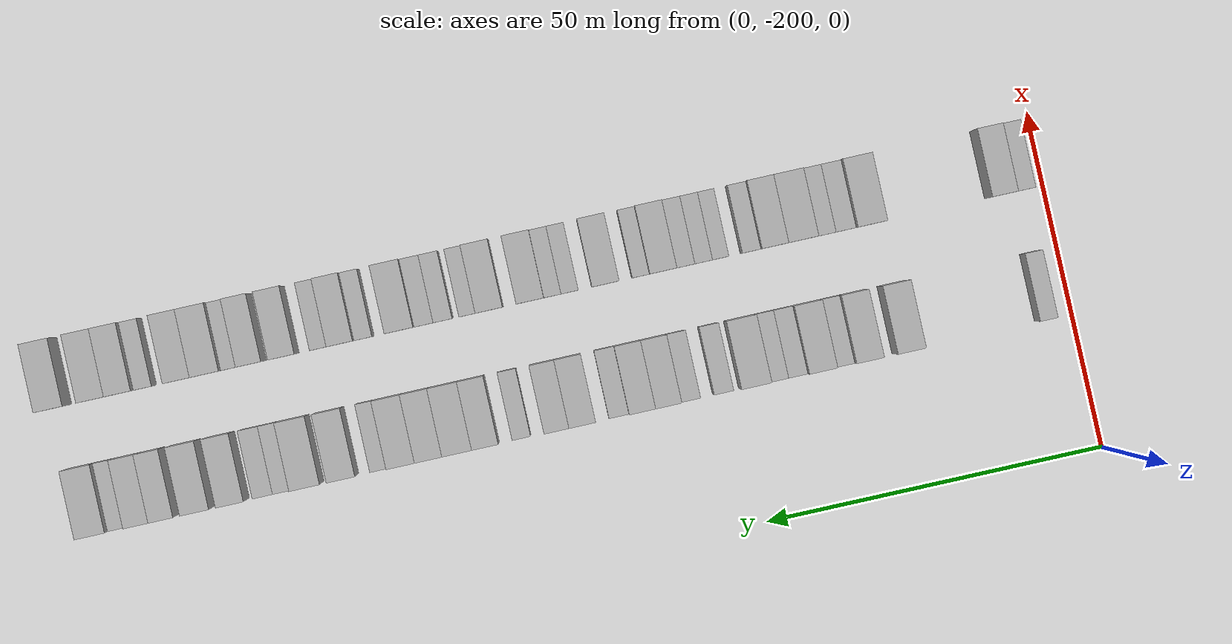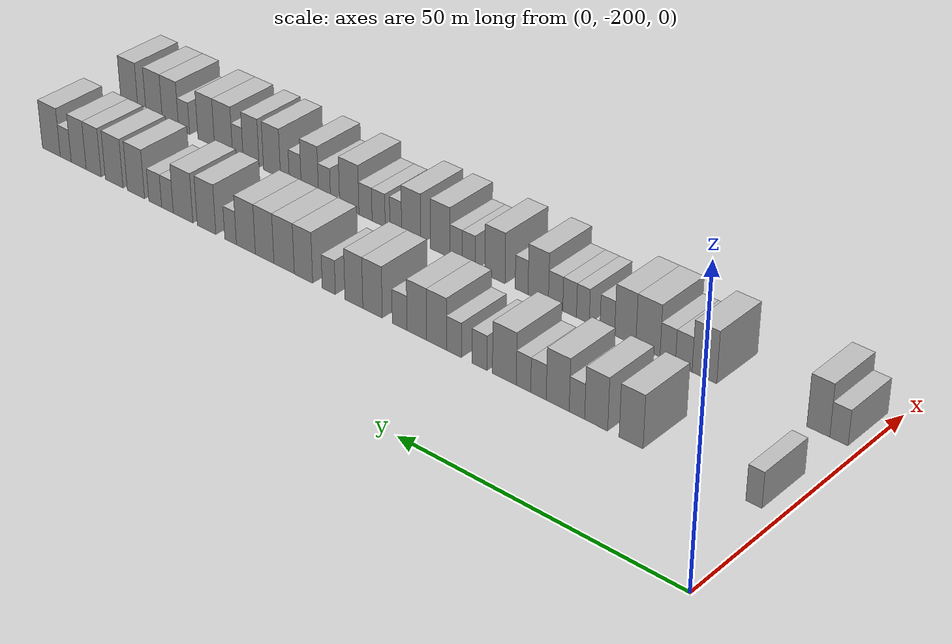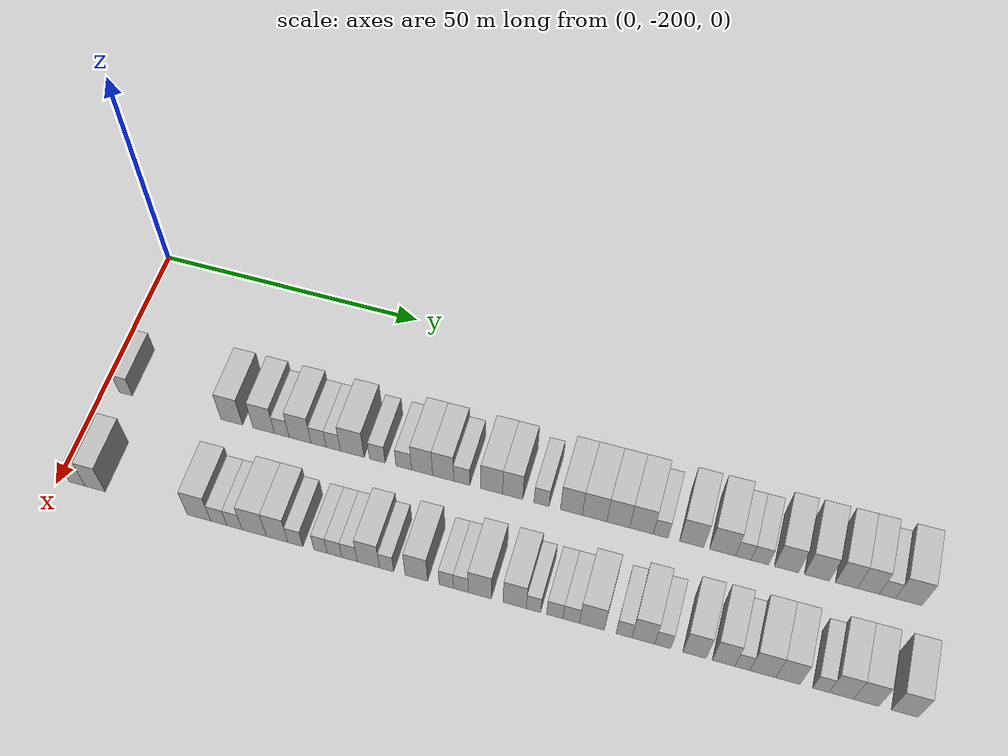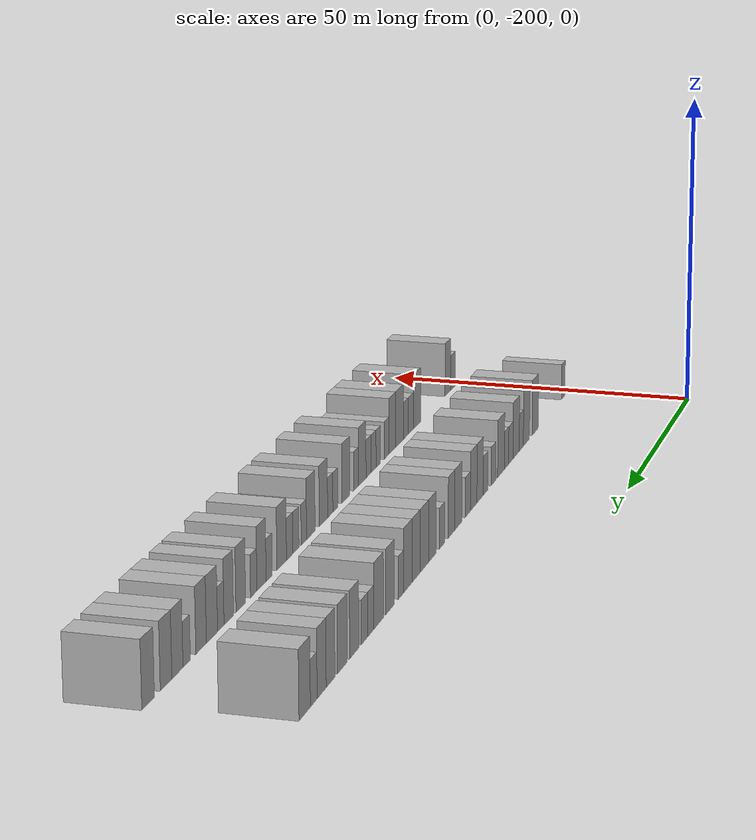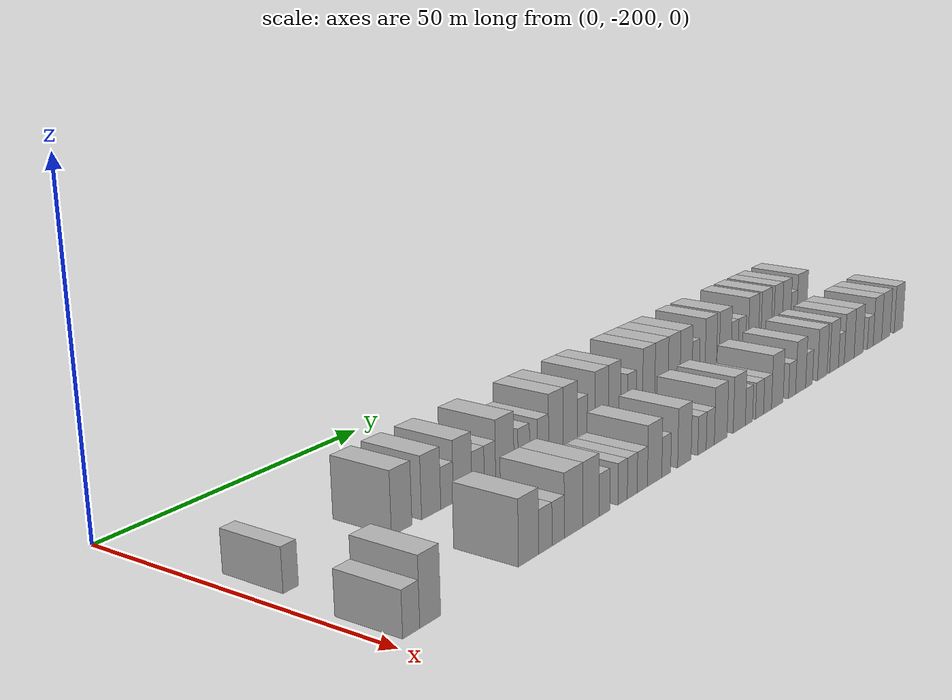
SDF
<sdf version="1.6">
 <world name="default">
  <model name="building_1">
   <static>1</static>
   <pose>25.0000 -195.6918 0 0.000000 0.000000 0.000000</pose>
   <link name="link">
    <pose>0 0 3.00 0 0 0</pose>
    <collision name="collision"><geometry><box><size>10.0000 2.6163 6.0000</size></box></geometry></collision>
    <visual name="visual">
     <cast_shadows>0</cast_shadows>
     <geometry><box><size>10.0000 2.6163 6.0000</size></box></geometry>
     <material>
      <script>
       <uri>model://HANNAS_wall/materials/scripts</uri>
       <uri>model://HANNAS_wall/materials/textures</uri>
       <name>vrc/HANNAS_wall</name>
      </script>
     </material>
    </visual>
   </link>
  </model>
  <model name="building_2">
   <static>1</static>
   <pose>25.0000 -175.1636 0 0.000000 0.000000 0.000000</pose>
   <link name="link">
    <pose>0 0 4.50 0 0 0</pose>
    <collision name="collision"><geometry><box><size>10.0000 4.1467 9.0000</size></box></geometry></collision>
    <visual name="visual">
     <cast_shadows>0</cast_shadows>
     <geometry><box><size>10.0000 4.1467 9.0000</size></box></geometry>
     <material>
      <script>
       <uri>model://HANNAS_wall/materials/scripts</uri>
       <uri>model://HANNAS_wall/materials/textures</uri>
       <name>vrc/HANNAS_wall</name>
      </script>
     </material>
    </visual>
   </link>
  </model>
  <model name="building_3">
   <static>1</static>
   <pose>25.0000 -169.0560 0 0.000000 0.000000 0.000000</pose>
   <link name="link">
    <pose>0 0 4.50 0 0 0</pose>
    <collision name="collision"><geometry><box><size>10.0000 4.0685 9.0000</size></box></geometry></collision>
    <visual name="visual">
     <cast_shadows>0</cast_shadows>
     <geometry><box><size>10.0000 4.0685 9.0000</size></box></geometry>
     <material>
      <script>
       <uri>model://HANNAS_wall/materials/scripts</uri>
       <uri>model://HANNAS_wall/materials/textures</uri>
       <name>vrc/HANNAS_wall</name>
      </script>
     </material>
    </visual>
   </link>
  </model>
  <model name="building_4">
   <static>1</static>
   <pose>25.0000 -165.6391 0 0.000000 0.000000 0.000000</pose>
   <link name="link">
    <pose>0 0 3.00 0 0 0</pose>
    <collision name="collision"><geometry><box><size>10.0000 2.7654 6.0000</size></box></geometry></collision>
    <visual name="visual">
     <cast_shadows>0</cast_shadows>
     <geometry><box><size>10.0000 2.7654 6.0000</size></box></geometry>
     <material>
      <script>
       <uri>model://HANNAS_wall/materials/scripts</uri>
       <uri>model://HANNAS_wall/materials/textures</uri>
       <name>vrc/HANNAS_wall</name>
      </script>
     </material>
    </visual>
   </link>
  </model>
  <model name="building_5">
   <static>1</static>
   <pose>25.0000 -162.1850 0 0.000000 0.000000 0.000000</pose>
   <link name="link">
    <pose>0 0 4.50 0 0 0</pose>
    <collision name="collision"><geometry><box><size>10.0000 4.1427 9.0000</size></box></geometry></collision>
    <visual name="visual">
     <cast_shadows>0</cast_shadows>
     <geometry><box><size>10.0000 4.1427 9.0000</size></box></geometry>
     <material>
      <script>
       <uri>model://HANNAS_wall/materials/scripts</uri>
       <uri>model://HANNAS_wall/materials/textures</uri>
       <name>vrc/HANNAS_wall</name>
      </script>
     </material>
    </visual>
   </link>
  </model>
  <model name="building_6">
   <static>1</static>
   <pose>25.0000 -158.6930 0 0.000000 0.000000 0.000000</pose>
   <link name="link">
    <pose>0 0 3.00 0 0 0</pose>
    <collision name="collision"><geometry><box><size>10.0000 2.8413 6.0000</size></box></geometry></collision>
    <visual name="visual">
     <cast_shadows>0</cast_shadows>
     <geometry><box><size>10.0000 2.8413 6.0000</size></box></geometry>
     <material>
      <script>
       <uri>model://HANNAS_wall/materials/scripts</uri>
       <uri>model://HANNAS_wall/materials/textures</uri>
       <name>vrc/HANNAS_wall</name>
      </script>
     </material>
    </visual>
   </link>
  </model>
  <model name="building_7">
   <static>1</static>
   <pose>25.0000 -155.9440 0 0.000000 0.000000 0.000000</pose>
   <link name="link">
    <pose>0 0 3.00 0 0 0</pose>
    <collision name="collision"><geometry><box><size>10.0000 2.6566 6.0000</size></box></geometry></collision>
    <visual name="visual">
     <cast_shadows>0</cast_shadows>
     <geometry><box><size>10.0000 2.6566 6.0000</size></box></geometry>
     <material>
      <script>
       <uri>model://HANNAS_wall/materials/scripts</uri>
       <uri>model://HANNAS_wall/materials/textures</uri>
       <name>vrc/HANNAS_wall</name>
      </script>
     </material>
    </visual>
   </link>
  </model>
  <model name="building_8">
   <static>1</static>
   <pose>25.0000 -152.3970 0 0.000000 0.000000 0.000000</pose>
   <link name="link">
    <pose>0 0 4.50 0 0 0</pose>
    <collision name="collision"><geometry><box><size>10.0000 4.4376 9.0000</size></box></geometry></collision>
    <visual name="visual">
     <cast_shadows>0</cast_shadows>
     <geometry><box><size>10.0000 4.4376 9.0000</size></box></geometry>
     <material>
      <script>
       <uri>model://HANNAS_wall/materials/scripts</uri>
       <uri>model://HANNAS_wall/materials/textures</uri>
       <name>vrc/HANNAS_wall</name>
      </script>
     </material>
    </visual>
   </link>
  </model>
  <model name="building_9">
   <static>1</static>
   <pose>25.0000 -147.7334 0 0.000000 0.000000 0.000000</pose>
   <link name="link">
    <pose>0 0 3.00 0 0 0</pose>
    <collision name="collision"><geometry><box><size>10.0000 2.8895 6.0000</size></box></geometry></collision>
    <visual name="visual">
     <cast_shadows>0</cast_shadows>
     <geometry><box><size>10.0000 2.8895 6.0000</size></box></geometry>
     <material>
      <script>
       <uri>model://HANNAS_wall/materials/scripts</uri>
       <uri>model://HANNAS_wall/materials/textures</uri>
       <name>vrc/HANNAS_wall</name>
      </script>
     </material>
    </visual>
   </link>
  </model>
  <model name="building_10">
   <static>1</static>
   <pose>25.0000 -142.8541 0 0.000000 0.000000 0.000000</pose>
   <link name="link">
    <pose>0 0 3.00 0 0 0</pose>
    <collision name="collision"><geometry><box><size>10.0000 2.8692 6.0000</size></box></geometry></collision>
    <visual name="visual">
     <cast_shadows>0</cast_shadows>
     <geometry><box><size>10.0000 2.8692 6.0000</size></box></geometry>
     <material>
      <script>
       <uri>model://HANNAS_wall/materials/scripts</uri>
       <uri>model://HANNAS_wall/materials/textures</uri>
       <name>vrc/HANNAS_wall</name>
      </script>
     </material>
    </visual>
   </link>
  </model>
  <model name="building_11">
   <static>1</static>
   <pose>25.0000 -139.4977 0 0.000000 0.000000 0.000000</pose>
   <link name="link">
    <pose>0 0 4.50 0 0 0</pose>
    <collision name="collision"><geometry><box><size>10.0000 3.8434 9.0000</size></box></geometry></collision>
    <visual name="visual">
     <cast_shadows>0</cast_shadows>
     <geometry><box><size>10.0000 3.8434 9.0000</size></box></geometry>
     <material>
      <script>
       <uri>model://HANNAS_wall/materials/scripts</uri>
       <uri>model://HANNAS_wall/materials/textures</uri>
       <name>vrc/HANNAS_wall</name>
      </script>
     </material>
    </visual>
   </link>
  </model>
  <model name="building_12">
   <static>1</static>
   <pose>25.0000 -135.6449 0 0.000000 0.000000 0.000000</pose>
   <link name="link">
    <pose>0 0 4.50 0 0 0</pose>
    <collision name="collision"><geometry><box><size>10.0000 3.8623 9.0000</size></box></geometry></collision>
    <visual name="visual">
     <cast_shadows>0</cast_shadows>
     <geometry><box><size>10.0000 3.8623 9.0000</size></box></geometry>
     <material>
      <script>
       <uri>model://HANNAS_wall/materials/scripts</uri>
       <uri>model://HANNAS_wall/materials/textures</uri>
       <name>vrc/HANNAS_wall</name>
      </script>
     </material>
    </visual>
   </link>
  </model>
  <model name="building_13">
   <static>1</static>
   <pose>25.0000 -132.2493 0 0.000000 0.000000 0.000000</pose>
   <link name="link">
    <pose>0 0 3.00 0 0 0</pose>
    <collision name="collision"><geometry><box><size>10.0000 2.9291 6.0000</size></box></geometry></collision>
    <visual name="visual">
     <cast_shadows>0</cast_shadows>
     <geometry><box><size>10.0000 2.9291 6.0000</size></box></geometry>
     <material>
      <script>
       <uri>model://HANNAS_wall/materials/scripts</uri>
       <uri>model://HANNAS_wall/materials/textures</uri>
       <name>vrc/HANNAS_wall</name>
      </script>
     </material>
    </visual>
   </link>
  </model>
  <model name="building_14">
   <static>1</static>
   <pose>25.0000 -126.8231 0 0.000000 0.000000 0.000000</pose>
   <link name="link">
    <pose>0 0 4.50 0 0 0</pose>
    <collision name="collision"><geometry><box><size>10.0000 3.9233 9.0000</size></box></geometry></collision>
    <visual name="visual">
     <cast_shadows>0</cast_shadows>
     <geometry><box><size>10.0000 3.9233 9.0000</size></box></geometry>
     <material>
      <script>
       <uri>model://HANNAS_wall/materials/scripts</uri>
       <uri>model://HANNAS_wall/materials/textures</uri>
       <name>vrc/HANNAS_wall</name>
      </script>
     </material>
    </visual>
   </link>
  </model>
  <model name="building_15">
   <static>1</static>
   <pose>25.0000 -123.0368 0 0.000000 0.000000 0.000000</pose>
   <link name="link">
    <pose>0 0 4.50 0 0 0</pose>
    <collision name="collision"><geometry><box><size>10.0000 3.6492 9.0000</size></box></geometry></collision>
    <visual name="visual">
     <cast_shadows>0</cast_shadows>
     <geometry><box><size>10.0000 3.6492 9.0000</size></box></geometry>
     <material>
      <script>
       <uri>model://HANNAS_wall/materials/scripts</uri>
       <uri>model://HANNAS_wall/materials/textures</uri>
       <name>vrc/HANNAS_wall</name>
      </script>
     </material>
    </visual>
   </link>
  </model>
  <model name="building_16">
   <static>1</static>
   <pose>25.0000 -117.8522 0 0.000000 0.000000 0.000000</pose>
   <link name="link">
    <pose>0 0 3.00 0 0 0</pose>
    <collision name="collision"><geometry><box><size>10.0000 2.7202 6.0000</size></box></geometry></collision>
    <visual name="visual">
     <cast_shadows>0</cast_shadows>
     <geometry><box><size>10.0000 2.7202 6.0000</size></box></geometry>
     <material>
      <script>
       <uri>model://HANNAS_wall/materials/scripts</uri>
       <uri>model://HANNAS_wall/materials/textures</uri>
       <name>vrc/HANNAS_wall</name>
      </script>
     </material>
    </visual>
   </link>
  </model>
  <model name="building_17">
   <static>1</static>
   <pose>25.0000 -112.5469 0 0.000000 0.000000 0.000000</pose>
   <link name="link">
    <pose>0 0 4.50 0 0 0</pose>
    <collision name="collision"><geometry><box><size>10.0000 3.8903 9.0000</size></box></geometry></collision>
    <visual name="visual">
     <cast_shadows>0</cast_shadows>
     <geometry><box><size>10.0000 3.8903 9.0000</size></box></geometry>
     <material>
      <script>
       <uri>model://HANNAS_wall/materials/scripts</uri>
       <uri>model://HANNAS_wall/materials/textures</uri>
       <name>vrc/HANNAS_wall</name>
      </script>
     </material>
    </visual>
   </link>
  </model>
  <model name="building_18">
   <static>1</static>
   <pose>25.0000 -108.4242 0 0.000000 0.000000 0.000000</pose>
   <link name="link">
    <pose>0 0 4.50 0 0 0</pose>
    <collision name="collision"><geometry><box><size>10.0000 4.3552 9.0000</size></box></geometry></collision>
    <visual name="visual">
     <cast_shadows>0</cast_shadows>
     <geometry><box><size>10.0000 4.3552 9.0000</size></box></geometry>
     <material>
      <script>
       <uri>model://HANNAS_wall/materials/scripts</uri>
       <uri>model://HANNAS_wall/materials/textures</uri>
       <name>vrc/HANNAS_wall</name>
      </script>
     </material>
    </visual>
   </link>
  </model>
  <model name="building_19">
   <static>1</static>
   <pose>25.0000 -104.2373 0 0.000000 0.000000 0.000000</pose>
   <link name="link">
    <pose>0 0 4.50 0 0 0</pose>
    <collision name="collision"><geometry><box><size>10.0000 4.0187 9.0000</size></box></geometry></collision>
    <visual name="visual">
     <cast_shadows>0</cast_shadows>
     <geometry><box><size>10.0000 4.0187 9.0000</size></box></geometry>
     <material>
      <script>
       <uri>model://HANNAS_wall/materials/scripts</uri>
       <uri>model://HANNAS_wall/materials/textures</uri>
       <name>vrc/HANNAS_wall</name>
      </script>
     </material>
    </visual>
   </link>
  </model>
  <model name="building_20">
   <static>1</static>
   <pose>25.0000 -100.1476 0 0.000000 0.000000 0.000000</pose>
   <link name="link">
    <pose>0 0 4.50 0 0 0</pose>
    <collision name="collision"><geometry><box><size>10.0000 4.1608 9.0000</size></box></geometry></collision>
    <visual name="visual">
     <cast_shadows>0</cast_shadows>
     <geometry><box><size>10.0000 4.1608 9.0000</size></box></geometry>
     <material>
      <script>
       <uri>model://HANNAS_wall/materials/scripts</uri>
       <uri>model://HANNAS_wall/materials/textures</uri>
       <name>vrc/HANNAS_wall</name>
      </script>
     </material>
    </visual>
   </link>
  </model>
  <model name="building_21">
   <static>1</static>
   <pose>25.0000 -96.7833 0 0.000000 0.000000 0.000000</pose>
   <link name="link">
    <pose>0 0 3.00 0 0 0</pose>
    <collision name="collision"><geometry><box><size>10.0000 2.5677 6.0000</size></box></geometry></collision>
    <visual name="visual">
     <cast_shadows>0</cast_shadows>
     <geometry><box><size>10.0000 2.5677 6.0000</size></box></geometry>
     <material>
      <script>
       <uri>model://HANNAS_wall/materials/scripts</uri>
       <uri>model://HANNAS_wall/materials/textures</uri>
       <name>vrc/HANNAS_wall</name>
      </script>
     </material>
    </visual>
   </link>
  </model>
  <model name="building_22">
   <static>1</static>
   <pose>25.0000 -91.4115 0 0.000000 0.000000 0.000000</pose>
   <link name="link">
    <pose>0 0 4.50 0 0 0</pose>
    <collision name="collision"><geometry><box><size>10.0000 4.1758 9.0000</size></box></geometry></collision>
    <visual name="visual">
     <cast_shadows>0</cast_shadows>
     <geometry><box><size>10.0000 4.1758 9.0000</size></box></geometry>
     <material>
      <script>
       <uri>model://HANNAS_wall/materials/scripts</uri>
       <uri>model://HANNAS_wall/materials/textures</uri>
       <name>vrc/HANNAS_wall</name>
      </script>
     </material>
    </visual>
   </link>
  </model>
  <model name="building_23">
   <static>1</static>
   <pose>25.0000 -86.0870 0 0.000000 0.000000 0.000000</pose>
   <link name="link">
    <pose>0 0 4.50 0 0 0</pose>
    <collision name="collision"><geometry><box><size>10.0000 4.4732 9.0000</size></box></geometry></collision>
    <visual name="visual">
     <cast_shadows>0</cast_shadows>
     <geometry><box><size>10.0000 4.4732 9.0000</size></box></geometry>
     <material>
      <script>
       <uri>model://HANNAS_wall/materials/scripts</uri>
       <uri>model://HANNAS_wall/materials/textures</uri>
       <name>vrc/HANNAS_wall</name>
      </script>
     </material>
    </visual>
   </link>
  </model>
  <model name="building_24">
   <static>1</static>
   <pose>25.0000 -82.5072 0 0.000000 0.000000 0.000000</pose>
   <link name="link">
    <pose>0 0 3.00 0 0 0</pose>
    <collision name="collision"><geometry><box><size>10.0000 2.6864 6.0000</size></box></geometry></collision>
    <visual name="visual">
     <cast_shadows>0</cast_shadows>
     <geometry><box><size>10.0000 2.6864 6.0000</size></box></geometry>
     <material>
      <script>
       <uri>model://HANNAS_wall/materials/scripts</uri>
       <uri>model://HANNAS_wall/materials/textures</uri>
       <name>vrc/HANNAS_wall</name>
      </script>
     </material>
    </visual>
   </link>
  </model>
  <model name="building_25">
   <static>1</static>
   <pose>25.0000 -79.6708 0 0.000000 0.000000 0.000000</pose>
   <link name="link">
    <pose>0 0 3.00 0 0 0</pose>
    <collision name="collision"><geometry><box><size>10.0000 2.9863 6.0000</size></box></geometry></collision>
    <visual name="visual">
     <cast_shadows>0</cast_shadows>
     <geometry><box><size>10.0000 2.9863 6.0000</size></box></geometry>
     <material>
      <script>
       <uri>model://HANNAS_wall/materials/scripts</uri>
       <uri>model://HANNAS_wall/materials/textures</uri>
       <name>vrc/HANNAS_wall</name>
      </script>
     </material>
    </visual>
   </link>
  </model>
  <model name="building_26">
   <static>1</static>
   <pose>25.0000 -75.1414 0 0.000000 0.000000 0.000000</pose>
   <link name="link">
    <pose>0 0 4.50 0 0 0</pose>
    <collision name="collision"><geometry><box><size>10.0000 4.0725 9.0000</size></box></geometry></collision>
    <visual name="visual">
     <cast_shadows>0</cast_shadows>
     <geometry><box><size>10.0000 4.0725 9.0000</size></box></geometry>
     <material>
      <script>
       <uri>model://HANNAS_wall/materials/scripts</uri>
       <uri>model://HANNAS_wall/materials/textures</uri>
       <name>vrc/HANNAS_wall</name>
      </script>
     </material>
    </visual>
   </link>
  </model>
  <model name="building_27">
   <static>1</static>
   <pose>25.0000 -69.9814 0 0.000000 0.000000 0.000000</pose>
   <link name="link">
    <pose>0 0 4.50 0 0 0</pose>
    <collision name="collision"><geometry><box><size>10.0000 4.2475 9.0000</size></box></geometry></collision>
    <visual name="visual">
     <cast_shadows>0</cast_shadows>
     <geometry><box><size>10.0000 4.2475 9.0000</size></box></geometry>
     <material>
      <script>
       <uri>model://HANNAS_wall/materials/scripts</uri>
       <uri>model://HANNAS_wall/materials/textures</uri>
       <name>vrc/HANNAS_wall</name>
      </script>
     </material>
    </visual>
   </link>
  </model>
  <model name="building_28">
   <static>1</static>
   <pose>25.0000 -65.0414 0 0.000000 0.000000 0.000000</pose>
   <link name="link">
    <pose>0 0 4.50 0 0 0</pose>
    <collision name="collision"><geometry><box><size>10.0000 3.6324 9.0000</size></box></geometry></collision>
    <visual name="visual">
     <cast_shadows>0</cast_shadows>
     <geometry><box><size>10.0000 3.6324 9.0000</size></box></geometry>
     <material>
      <script>
       <uri>model://HANNAS_wall/materials/scripts</uri>
       <uri>model://HANNAS_wall/materials/textures</uri>
       <name>vrc/HANNAS_wall</name>
      </script>
     </material>
    </visual>
   </link>
  </model>
  <model name="building_29">
   <static>1</static>
   <pose>25.0000 -61.3847 0 0.000000 0.000000 0.000000</pose>
   <link name="link">
    <pose>0 0 4.50 0 0 0</pose>
    <collision name="collision"><geometry><box><size>10.0000 3.6810 9.0000</size></box></geometry></collision>
    <visual name="visual">
     <cast_shadows>0</cast_shadows>
     <geometry><box><size>10.0000 3.6810 9.0000</size></box></geometry>
     <material>
      <script>
       <uri>model://HANNAS_wall/materials/scripts</uri>
       <uri>model://HANNAS_wall/materials/textures</uri>
       <name>vrc/HANNAS_wall</name>
      </script>
     </material>
    </visual>
   </link>
  </model>
  <model name="building_30">
   <static>1</static>
   <pose>25.0000 -58.1936 0 0.000000 0.000000 0.000000</pose>
   <link name="link">
    <pose>0 0 3.00 0 0 0</pose>
    <collision name="collision"><geometry><box><size>10.0000 2.7013 6.0000</size></box></geometry></collision>
    <visual name="visual">
     <cast_shadows>0</cast_shadows>
     <geometry><box><size>10.0000 2.7013 6.0000</size></box></geometry>
     <material>
      <script>
       <uri>model://HANNAS_wall/materials/scripts</uri>
       <uri>model://HANNAS_wall/materials/textures</uri>
       <name>vrc/HANNAS_wall</name>
      </script>
     </material>
    </visual>
   </link>
  </model>
  <model name="building_31">
   <static>1</static>
   <pose>25.0000 -54.6182 0 0.000000 0.000000 0.000000</pose>
   <link name="link">
    <pose>0 0 4.50 0 0 0</pose>
    <collision name="collision"><geometry><box><size>10.0000 4.4496 9.0000</size></box></geometry></collision>
    <visual name="visual">
     <cast_shadows>0</cast_shadows>
     <geometry><box><size>10.0000 4.4496 9.0000</size></box></geometry>
     <material>
      <script>
       <uri>model://HANNAS_wall/materials/scripts</uri>
       <uri>model://HANNAS_wall/materials/textures</uri>
       <name>vrc/HANNAS_wall</name>
      </script>
     </material>
    </visual>
   </link>
  </model>
  <model name="building_101">
   <static>1</static>
   <pose>44.0000 -196.5016 0 0.000000 0.000000 0.000000</pose>
   <link name="link">
    <pose>0 0 3.00 0 0 0</pose>
    <collision name="collision"><geometry><box><size>10.0000 2.9969 6.0000</size></box></geometry></collision>
    <visual name="visual">
     <cast_shadows>0</cast_shadows>
     <geometry><box><size>10.0000 2.9969 6.0000</size></box></geometry>
     <material>
      <script>
       <uri>model://HANNAS_wall/materials/scripts</uri>
       <uri>model://HANNAS_wall/materials/textures</uri>
       <name>vrc/HANNAS_wall</name>
      </script>
     </material>
    </visual>
   </link>
  </model>
  <model name="building_102">
   <static>1</static>
   <pose>44.0000 -193.1091 0 0.000000 0.000000 0.000000</pose>
   <link name="link">
    <pose>0 0 4.50 0 0 0</pose>
    <collision name="collision"><geometry><box><size>10.0000 3.7880 9.0000</size></box></geometry></collision>
    <visual name="visual">
     <cast_shadows>0</cast_shadows>
     <geometry><box><size>10.0000 3.7880 9.0000</size></box></geometry>
     <material>
      <script>
       <uri>model://HANNAS_wall/materials/scripts</uri>
       <uri>model://HANNAS_wall/materials/textures</uri>
       <name>vrc/HANNAS_wall</name>
      </script>
     </material>
    </visual>
   </link>
  </model>
  <model name="building_103">
   <static>1</static>
   <pose>44.0000 -173.6832 0 0.000000 0.000000 0.000000</pose>
   <link name="link">
    <pose>0 0 4.50 0 0 0</pose>
    <collision name="collision"><geometry><box><size>10.0000 4.3546 9.0000</size></box></geometry></collision>
    <visual name="visual">
     <cast_shadows>0</cast_shadows>
     <geometry><box><size>10.0000 4.3546 9.0000</size></box></geometry>
     <material>
      <script>
       <uri>model://HANNAS_wall/materials/scripts</uri>
       <uri>model://HANNAS_wall/materials/textures</uri>
       <name>vrc/HANNAS_wall</name>
      </script>
     </material>
    </visual>
   </link>
  </model>
  <model name="building_104">
   <static>1</static>
   <pose>44.0000 -170.0219 0 0.000000 0.000000 0.000000</pose>
   <link name="link">
    <pose>0 0 3.00 0 0 0</pose>
    <collision name="collision"><geometry><box><size>10.0000 2.9681 6.0000</size></box></geometry></collision>
    <visual name="visual">
     <cast_shadows>0</cast_shadows>
     <geometry><box><size>10.0000 2.9681 6.0000</size></box></geometry>
     <material>
      <script>
       <uri>model://HANNAS_wall/materials/scripts</uri>
       <uri>model://HANNAS_wall/materials/textures</uri>
       <name>vrc/HANNAS_wall</name>
      </script>
     </material>
    </visual>
   </link>
  </model>
  <model name="building_105">
   <static>1</static>
   <pose>44.0000 -167.1491 0 0.000000 0.000000 0.000000</pose>
   <link name="link">
    <pose>0 0 3.00 0 0 0</pose>
    <collision name="collision"><geometry><box><size>10.0000 2.7774 6.0000</size></box></geometry></collision>
    <visual name="visual">
     <cast_shadows>0</cast_shadows>
     <geometry><box><size>10.0000 2.7774 6.0000</size></box></geometry>
     <material>
      <script>
       <uri>model://HANNAS_wall/materials/scripts</uri>
       <uri>model://HANNAS_wall/materials/textures</uri>
       <name>vrc/HANNAS_wall</name>
      </script>
     </material>
    </visual>
   </link>
  </model>
  <model name="building_106">
   <static>1</static>
   <pose>44.0000 -163.5591 0 0.000000 0.000000 0.000000</pose>
   <link name="link">
    <pose>0 0 4.50 0 0 0</pose>
    <collision name="collision"><geometry><box><size>10.0000 4.4026 9.0000</size></box></geometry></collision>
    <visual name="visual">
     <cast_shadows>0</cast_shadows>
     <geometry><box><size>10.0000 4.4026 9.0000</size></box></geometry>
     <material>
      <script>
       <uri>model://HANNAS_wall/materials/scripts</uri>
       <uri>model://HANNAS_wall/materials/textures</uri>
       <name>vrc/HANNAS_wall</name>
      </script>
     </material>
    </visual>
   </link>
  </model>
  <model name="building_107">
   <static>1</static>
   <pose>44.0000 -159.4034 0 0.000000 0.000000 0.000000</pose>
   <link name="link">
    <pose>0 0 4.50 0 0 0</pose>
    <collision name="collision"><geometry><box><size>10.0000 3.9089 9.0000</size></box></geometry></collision>
    <visual name="visual">
     <cast_shadows>0</cast_shadows>
     <geometry><box><size>10.0000 3.9089 9.0000</size></box></geometry>
     <material>
      <script>
       <uri>model://HANNAS_wall/materials/scripts</uri>
       <uri>model://HANNAS_wall/materials/textures</uri>
       <name>vrc/HANNAS_wall</name>
      </script>
     </material>
    </visual>
   </link>
  </model>
  <model name="building_108">
   <static>1</static>
   <pose>44.0000 -156.0892 0 0.000000 0.000000 0.000000</pose>
   <link name="link">
    <pose>0 0 3.00 0 0 0</pose>
    <collision name="collision"><geometry><box><size>10.0000 2.7195 6.0000</size></box></geometry></collision>
    <visual name="visual">
     <cast_shadows>0</cast_shadows>
     <geometry><box><size>10.0000 2.7195 6.0000</size></box></geometry>
     <material>
      <script>
       <uri>model://HANNAS_wall/materials/scripts</uri>
       <uri>model://HANNAS_wall/materials/textures</uri>
       <name>vrc/HANNAS_wall</name>
      </script>
     </material>
    </visual>
   </link>
  </model>
  <model name="building_109">
   <static>1</static>
   <pose>44.0000 -151.5246 0 0.000000 0.000000 0.000000</pose>
   <link name="link">
    <pose>0 0 3.00 0 0 0</pose>
    <collision name="collision"><geometry><box><size>10.0000 2.4096 6.0000</size></box></geometry></collision>
    <visual name="visual">
     <cast_shadows>0</cast_shadows>
     <geometry><box><size>10.0000 2.4096 6.0000</size></box></geometry>
     <material>
      <script>
       <uri>model://HANNAS_wall/materials/scripts</uri>
       <uri>model://HANNAS_wall/materials/textures</uri>
       <name>vrc/HANNAS_wall</name>
      </script>
     </material>
    </visual>
   </link>
  </model>
  <model name="building_110">
   <static>1</static>
   <pose>44.0000 -149.0148 0 0.000000 0.000000 0.000000</pose>
   <link name="link">
    <pose>0 0 3.00 0 0 0</pose>
    <collision name="collision"><geometry><box><size>10.0000 2.6100 6.0000</size></box></geometry></collision>
    <visual name="visual">
     <cast_shadows>0</cast_shadows>
     <geometry><box><size>10.0000 2.6100 6.0000</size></box></geometry>
     <material>
      <script>
       <uri>model://HANNAS_wall/materials/scripts</uri>
       <uri>model://HANNAS_wall/materials/textures</uri>
       <name>vrc/HANNAS_wall</name>
      </script>
     </material>
    </visual>
   </link>
  </model>
  <model name="building_111">
   <static>1</static>
   <pose>44.0000 -146.3328 0 0.000000 0.000000 0.000000</pose>
   <link name="link">
    <pose>0 0 3.00 0 0 0</pose>
    <collision name="collision"><geometry><box><size>10.0000 2.7539 6.0000</size></box></geometry></collision>
    <visual name="visual">
     <cast_shadows>0</cast_shadows>
     <geometry><box><size>10.0000 2.7539 6.0000</size></box></geometry>
     <material>
      <script>
       <uri>model://HANNAS_wall/materials/scripts</uri>
       <uri>model://HANNAS_wall/materials/textures</uri>
       <name>vrc/HANNAS_wall</name>
      </script>
     </material>
    </visual>
   </link>
  </model>
  <model name="building_112">
   <static>1</static>
   <pose>44.0000 -142.9804 0 0.000000 0.000000 0.000000</pose>
   <link name="link">
    <pose>0 0 4.50 0 0 0</pose>
    <collision name="collision"><geometry><box><size>10.0000 3.9509 9.0000</size></box></geometry></collision>
    <visual name="visual">
     <cast_shadows>0</cast_shadows>
     <geometry><box><size>10.0000 3.9509 9.0000</size></box></geometry>
     <material>
      <script>
       <uri>model://HANNAS_wall/materials/scripts</uri>
       <uri>model://HANNAS_wall/materials/textures</uri>
       <name>vrc/HANNAS_wall</name>
      </script>
     </material>
    </visual>
   </link>
  </model>
  <model name="building_113">
   <static>1</static>
   <pose>44.0000 -139.7485 0 0.000000 0.000000 0.000000</pose>
   <link name="link">
    <pose>0 0 3.00 0 0 0</pose>
    <collision name="collision"><geometry><box><size>10.0000 2.5129 6.0000</size></box></geometry></collision>
    <visual name="visual">
     <cast_shadows>0</cast_shadows>
     <geometry><box><size>10.0000 2.5129 6.0000</size></box></geometry>
     <material>
      <script>
       <uri>model://HANNAS_wall/materials/scripts</uri>
       <uri>model://HANNAS_wall/materials/textures</uri>
       <name>vrc/HANNAS_wall</name>
      </script>
     </material>
    </visual>
   </link>
  </model>
  <model name="building_114">
   <static>1</static>
   <pose>44.0000 -134.5050 0 0.000000 0.000000 0.000000</pose>
   <link name="link">
    <pose>0 0 4.50 0 0 0</pose>
    <collision name="collision"><geometry><box><size>10.0000 3.9740 9.0000</size></box></geometry></collision>
    <visual name="visual">
     <cast_shadows>0</cast_shadows>
     <geometry><box><size>10.0000 3.9740 9.0000</size></box></geometry>
     <material>
      <script>
       <uri>model://HANNAS_wall/materials/scripts</uri>
       <uri>model://HANNAS_wall/materials/textures</uri>
       <name>vrc/HANNAS_wall</name>
      </script>
     </material>
    </visual>
   </link>
  </model>
  <model name="building_115">
   <static>1</static>
   <pose>44.0000 -129.2432 0 0.000000 0.000000 0.000000</pose>
   <link name="link">
    <pose>0 0 3.00 0 0 0</pose>
    <collision name="collision"><geometry><box><size>10.0000 2.5497 6.0000</size></box></geometry></collision>
    <visual name="visual">
     <cast_shadows>0</cast_shadows>
     <geometry><box><size>10.0000 2.5497 6.0000</size></box></geometry>
     <material>
      <script>
       <uri>model://HANNAS_wall/materials/scripts</uri>
       <uri>model://HANNAS_wall/materials/textures</uri>
       <name>vrc/HANNAS_wall</name>
      </script>
     </material>
    </visual>
   </link>
  </model>
  <model name="building_116">
   <static>1</static>
   <pose>44.0000 -126.7005 0 0.000000 0.000000 0.000000</pose>
   <link name="link">
    <pose>0 0 3.00 0 0 0</pose>
    <collision name="collision"><geometry><box><size>10.0000 2.5355 6.0000</size></box></geometry></collision>
    <visual name="visual">
     <cast_shadows>0</cast_shadows>
     <geometry><box><size>10.0000 2.5355 6.0000</size></box></geometry>
     <material>
      <script>
       <uri>model://HANNAS_wall/materials/scripts</uri>
       <uri>model://HANNAS_wall/materials/textures</uri>
       <name>vrc/HANNAS_wall</name>
      </script>
     </material>
    </visual>
   </link>
  </model>
  <model name="building_117">
   <static>1</static>
   <pose>44.0000 -123.4116 0 0.000000 0.000000 0.000000</pose>
   <link name="link">
    <pose>0 0 4.50 0 0 0</pose>
    <collision name="collision"><geometry><box><size>10.0000 4.0423 9.0000</size></box></geometry></collision>
    <visual name="visual">
     <cast_shadows>0</cast_shadows>
     <geometry><box><size>10.0000 4.0423 9.0000</size></box></geometry>
     <material>
      <script>
       <uri>model://HANNAS_wall/materials/scripts</uri>
       <uri>model://HANNAS_wall/materials/textures</uri>
       <name>vrc/HANNAS_wall</name>
      </script>
     </material>
    </visual>
   </link>
  </model>
  <model name="building_118">
   <static>1</static>
   <pose>44.0000 -117.3875 0 0.000000 0.000000 0.000000</pose>
   <link name="link">
    <pose>0 0 4.50 0 0 0</pose>
    <collision name="collision"><geometry><box><size>10.0000 4.0059 9.0000</size></box></geometry></collision>
    <visual name="visual">
     <cast_shadows>0</cast_shadows>
     <geometry><box><size>10.0000 4.0059 9.0000</size></box></geometry>
     <material>
      <script>
       <uri>model://HANNAS_wall/materials/scripts</uri>
       <uri>model://HANNAS_wall/materials/textures</uri>
       <name>vrc/HANNAS_wall</name>
      </script>
     </material>
    </visual>
   </link>
  </model>
  <model name="building_119">
   <static>1</static>
   <pose>44.0000 -114.1462 0 0.000000 0.000000 0.000000</pose>
   <link name="link">
    <pose>0 0 3.00 0 0 0</pose>
    <collision name="collision"><geometry><box><size>10.0000 2.4768 6.0000</size></box></geometry></collision>
    <visual name="visual">
     <cast_shadows>0</cast_shadows>
     <geometry><box><size>10.0000 2.4768 6.0000</size></box></geometry>
     <material>
      <script>
       <uri>model://HANNAS_wall/materials/scripts</uri>
       <uri>model://HANNAS_wall/materials/textures</uri>
       <name>vrc/HANNAS_wall</name>
      </script>
     </material>
    </visual>
   </link>
  </model>
  <model name="building_120">
   <static>1</static>
   <pose>44.0000 -110.5073 0 0.000000 0.000000 0.000000</pose>
   <link name="link">
    <pose>0 0 3.00 0 0 0</pose>
    <collision name="collision"><geometry><box><size>10.0000 2.8010 6.0000</size></box></geometry></collision>
    <visual name="visual">
     <cast_shadows>0</cast_shadows>
     <geometry><box><size>10.0000 2.8010 6.0000</size></box></geometry>
     <material>
      <script>
       <uri>model://HANNAS_wall/materials/scripts</uri>
       <uri>model://HANNAS_wall/materials/textures</uri>
       <name>vrc/HANNAS_wall</name>
      </script>
     </material>
    </visual>
   </link>
  </model>
  <model name="building_121">
   <static>1</static>
   <pose>44.0000 -107.6950 0 0.000000 0.000000 0.000000</pose>
   <link name="link">
    <pose>0 0 3.00 0 0 0</pose>
    <collision name="collision"><geometry><box><size>10.0000 2.8236 6.0000</size></box></geometry></collision>
    <visual name="visual">
     <cast_shadows>0</cast_shadows>
     <geometry><box><size>10.0000 2.8236 6.0000</size></box></geometry>
     <material>
      <script>
       <uri>model://HANNAS_wall/materials/scripts</uri>
       <uri>model://HANNAS_wall/materials/textures</uri>
       <name>vrc/HANNAS_wall</name>
      </script>
     </material>
    </visual>
   </link>
  </model>
  <model name="building_122">
   <static>1</static>
   <pose>44.0000 -104.1789 0 0.000000 0.000000 0.000000</pose>
   <link name="link">
    <pose>0 0 4.50 0 0 0</pose>
    <collision name="collision"><geometry><box><size>10.0000 4.2086 9.0000</size></box></geometry></collision>
    <visual name="visual">
     <cast_shadows>0</cast_shadows>
     <geometry><box><size>10.0000 4.2086 9.0000</size></box></geometry>
     <material>
      <script>
       <uri>model://HANNAS_wall/materials/scripts</uri>
       <uri>model://HANNAS_wall/materials/textures</uri>
       <name>vrc/HANNAS_wall</name>
      </script>
     </material>
    </visual>
   </link>
  </model>
  <model name="building_123">
   <static>1</static>
   <pose>44.0000 -98.7515 0 0.000000 0.000000 0.000000</pose>
   <link name="link">
    <pose>0 0 3.00 0 0 0</pose>
    <collision name="collision"><geometry><box><size>10.0000 2.6462 6.0000</size></box></geometry></collision>
    <visual name="visual">
     <cast_shadows>0</cast_shadows>
     <geometry><box><size>10.0000 2.6462 6.0000</size></box></geometry>
     <material>
      <script>
       <uri>model://HANNAS_wall/materials/scripts</uri>
       <uri>model://HANNAS_wall/materials/textures</uri>
       <name>vrc/HANNAS_wall</name>
      </script>
     </material>
    </visual>
   </link>
  </model>
  <model name="building_124">
   <static>1</static>
   <pose>44.0000 -95.4973 0 0.000000 0.000000 0.000000</pose>
   <link name="link">
    <pose>0 0 4.50 0 0 0</pose>
    <collision name="collision"><geometry><box><size>10.0000 3.8623 9.0000</size></box></geometry></collision>
    <visual name="visual">
     <cast_shadows>0</cast_shadows>
     <geometry><box><size>10.0000 3.8623 9.0000</size></box></geometry>
     <material>
      <script>
       <uri>model://HANNAS_wall/materials/scripts</uri>
       <uri>model://HANNAS_wall/materials/textures</uri>
       <name>vrc/HANNAS_wall</name>
      </script>
     </material>
    </visual>
   </link>
  </model>
  <model name="building_125">
   <static>1</static>
   <pose>44.0000 -92.2260 0 0.000000 0.000000 0.000000</pose>
   <link name="link">
    <pose>0 0 3.00 0 0 0</pose>
    <collision name="collision"><geometry><box><size>10.0000 2.6803 6.0000</size></box></geometry></collision>
    <visual name="visual">
     <cast_shadows>0</cast_shadows>
     <geometry><box><size>10.0000 2.6803 6.0000</size></box></geometry>
     <material>
      <script>
       <uri>model://HANNAS_wall/materials/scripts</uri>
       <uri>model://HANNAS_wall/materials/textures</uri>
       <name>vrc/HANNAS_wall</name>
      </script>
     </material>
    </visual>
   </link>
  </model>
  <model name="building_126">
   <static>1</static>
   <pose>44.0000 -86.9410 0 0.000000 0.000000 0.000000</pose>
   <link name="link">
    <pose>0 0 4.50 0 0 0</pose>
    <collision name="collision"><geometry><box><size>10.0000 3.8898 9.0000</size></box></geometry></collision>
    <visual name="visual">
     <cast_shadows>0</cast_shadows>
     <geometry><box><size>10.0000 3.8898 9.0000</size></box></geometry>
     <material>
      <script>
       <uri>model://HANNAS_wall/materials/scripts</uri>
       <uri>model://HANNAS_wall/materials/textures</uri>
       <name>vrc/HANNAS_wall</name>
      </script>
     </material>
    </visual>
   </link>
  </model>
  <model name="building_127">
   <static>1</static>
   <pose>44.0000 -82.1392 0 0.000000 0.000000 0.000000</pose>
   <link name="link">
    <pose>0 0 4.50 0 0 0</pose>
    <collision name="collision"><geometry><box><size>10.0000 3.7139 9.0000</size></box></geometry></collision>
    <visual name="visual">
     <cast_shadows>0</cast_shadows>
     <geometry><box><size>10.0000 3.7139 9.0000</size></box></geometry>
     <material>
      <script>
       <uri>model://HANNAS_wall/materials/scripts</uri>
       <uri>model://HANNAS_wall/materials/textures</uri>
       <name>vrc/HANNAS_wall</name>
      </script>
     </material>
    </visual>
   </link>
  </model>
  <model name="building_128">
   <static>1</static>
   <pose>44.0000 -79.0399 0 0.000000 0.000000 0.000000</pose>
   <link name="link">
    <pose>0 0 3.00 0 0 0</pose>
    <collision name="collision"><geometry><box><size>10.0000 2.4846 6.0000</size></box></geometry></collision>
    <visual name="visual">
     <cast_shadows>0</cast_shadows>
     <geometry><box><size>10.0000 2.4846 6.0000</size></box></geometry>
     <material>
      <script>
       <uri>model://HANNAS_wall/materials/scripts</uri>
       <uri>model://HANNAS_wall/materials/textures</uri>
       <name>vrc/HANNAS_wall</name>
      </script>
     </material>
    </visual>
   </link>
  </model>
  <model name="building_129">
   <static>1</static>
   <pose>44.0000 -75.6686 0 0.000000 0.000000 0.000000</pose>
   <link name="link">
    <pose>0 0 4.50 0 0 0</pose>
    <collision name="collision"><geometry><box><size>10.0000 4.2580 9.0000</size></box></geometry></collision>
    <visual name="visual">
     <cast_shadows>0</cast_shadows>
     <geometry><box><size>10.0000 4.2580 9.0000</size></box></geometry>
     <material>
      <script>
       <uri>model://HANNAS_wall/materials/scripts</uri>
       <uri>model://HANNAS_wall/materials/textures</uri>
       <name>vrc/HANNAS_wall</name>
      </script>
     </material>
    </visual>
   </link>
  </model>
  <model name="building_130">
   <static>1</static>
   <pose>44.0000 -71.5595 0 0.000000 0.000000 0.000000</pose>
   <link name="link">
    <pose>0 0 4.50 0 0 0</pose>
    <collision name="collision"><geometry><box><size>10.0000 3.9604 9.0000</size></box></geometry></collision>
    <visual name="visual">
     <cast_shadows>0</cast_shadows>
     <geometry><box><size>10.0000 3.9604 9.0000</size></box></geometry>
     <material>
      <script>
       <uri>model://HANNAS_wall/materials/scripts</uri>
       <uri>model://HANNAS_wall/materials/textures</uri>
       <name>vrc/HANNAS_wall</name>
      </script>
     </material>
    </visual>
   </link>
  </model>
  <model name="building_131">
   <static>1</static>
   <pose>44.0000 -66.2508 0 0.000000 0.000000 0.000000</pose>
   <link name="link">
    <pose>0 0 3.00 0 0 0</pose>
    <collision name="collision"><geometry><box><size>10.0000 2.6569 6.0000</size></box></geometry></collision>
    <visual name="visual">
     <cast_shadows>0</cast_shadows>
     <geometry><box><size>10.0000 2.6569 6.0000</size></box></geometry>
     <material>
      <script>
       <uri>model://HANNAS_wall/materials/scripts</uri>
       <uri>model://HANNAS_wall/materials/textures</uri>
       <name>vrc/HANNAS_wall</name>
      </script>
     </material>
    </visual>
   </link>
  </model>
  <model name="building_132">
   <static>1</static>
   <pose>44.0000 -62.9458 0 0.000000 0.000000 0.000000</pose>
   <link name="link">
    <pose>0 0 4.50 0 0 0</pose>
    <collision name="collision"><geometry><box><size>10.0000 3.9531 9.0000</size></box></geometry></collision>
    <visual name="visual">
     <cast_shadows>0</cast_shadows>
     <geometry><box><size>10.0000 3.9531 9.0000</size></box></geometry>
     <material>
      <script>
       <uri>model://HANNAS_wall/materials/scripts</uri>
       <uri>model://HANNAS_wall/materials/textures</uri>
       <name>vrc/HANNAS_wall</name>
      </script>
     </material>
    </visual>
   </link>
  </model>
  <model name="building_133">
   <static>1</static>
   <pose>44.0000 -58.9420 0 0.000000 0.000000 0.000000</pose>
   <link name="link">
    <pose>0 0 4.50 0 0 0</pose>
    <collision name="collision"><geometry><box><size>10.0000 4.0546 9.0000</size></box></geometry></collision>
    <visual name="visual">
     <cast_shadows>0</cast_shadows>
     <geometry><box><size>10.0000 4.0546 9.0000</size></box></geometry>
     <material>
      <script>
       <uri>model://HANNAS_wall/materials/scripts</uri>
       <uri>model://HANNAS_wall/materials/textures</uri>
       <name>vrc/HANNAS_wall</name>
      </script>
     </material>
    </visual>
   </link>
  </model>
  <model name="building_134">
   <static>1</static>
   <pose>44.0000 -52.7858 0 0.000000 0.000000 0.000000</pose>
   <link name="link">
    <pose>0 0 4.50 0 0 0</pose>
    <collision name="collision"><geometry><box><size>10.0000 4.2578 9.0000</size></box></geometry></collision>
    <visual name="visual">
     <cast_shadows>0</cast_shadows>
     <geometry><box><size>10.0000 4.2578 9.0000</size></box></geometry>
     <material>
      <script>
       <uri>model://HANNAS_wall/materials/scripts</uri>
       <uri>model://HANNAS_wall/materials/textures</uri>
       <name>vrc/HANNAS_wall</name>
      </script>
     </material>
    </visual>
   </link>
  </model>
 </world>
</sdf>
